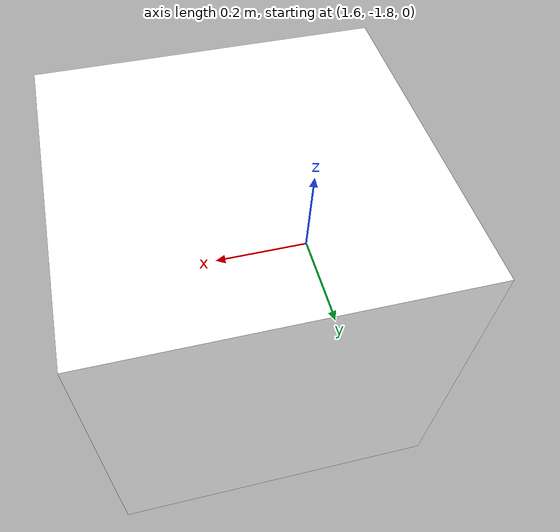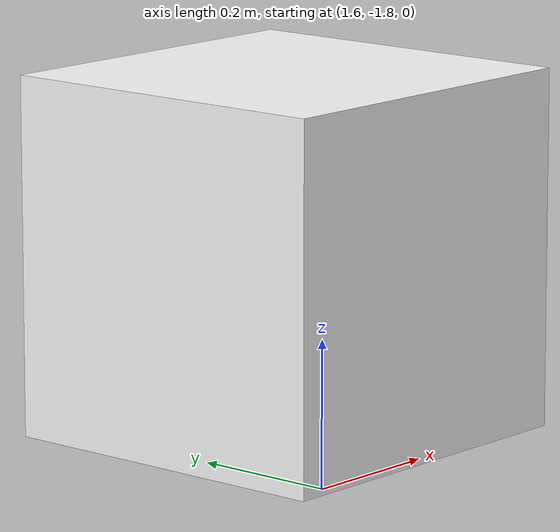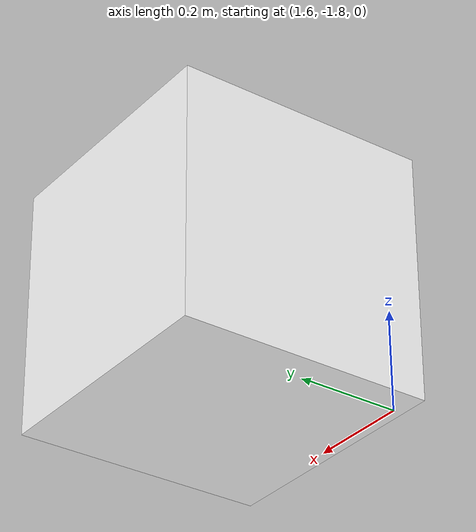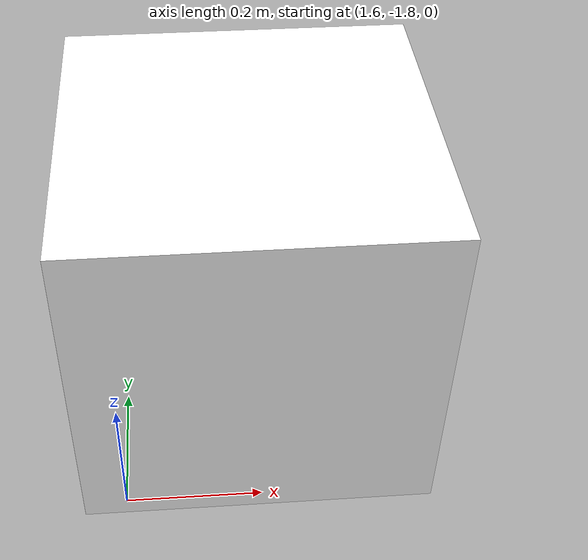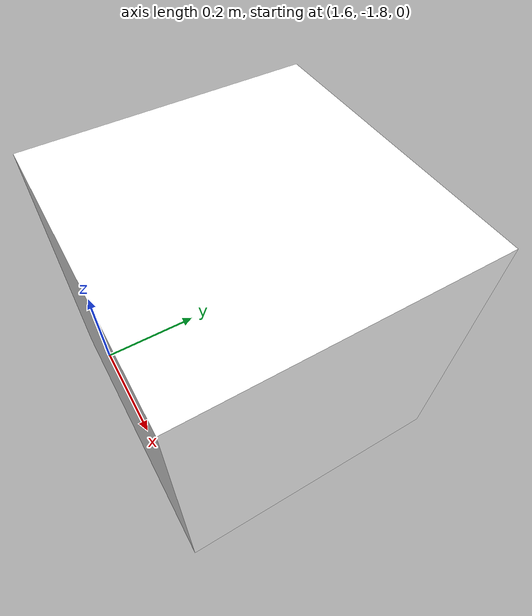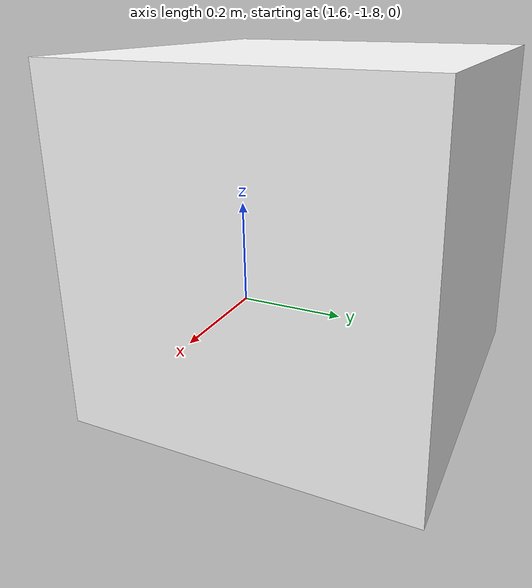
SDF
<?xml version='1.0'?>
<sdf version='1.7'>
  <model name='apriltag'>
    <pose>1.025 -0.91 0 0 -0 0</pose>
    <link name='Wall_0'>
      <collision name='Wall_0_Collision'>
        <geometry>
          <box>
            <size>1.5 1.5 1.5</size>
          </box>
        </geometry>
        <pose>0 0 0.25 0 -0 0</pose>
      </collision>
      <visual name='Wall_0_Visual'>
        <pose>0 0 0.25 0 -0 0</pose>
        <geometry>
          <box>
            <size>0.51 0.5 0.5</size>
          </box>
        </geometry>
        <material>
          <script>
            <uri>model://apriltag/materials/scripts</uri>
            <uri>model://apriltag/materials/textures/</uri>
            <name>cube_qrcode</name>
          </script>
          <ambient>1 1 1 1</ambient>
        </material>
        <meta>
          <layer>0</layer>
        </meta>
      </visual>
      <pose>0.77 -0.66 0 0 -0 3.14159</pose>
    </link>
    <static>1</static>
  </model>
</sdf>
